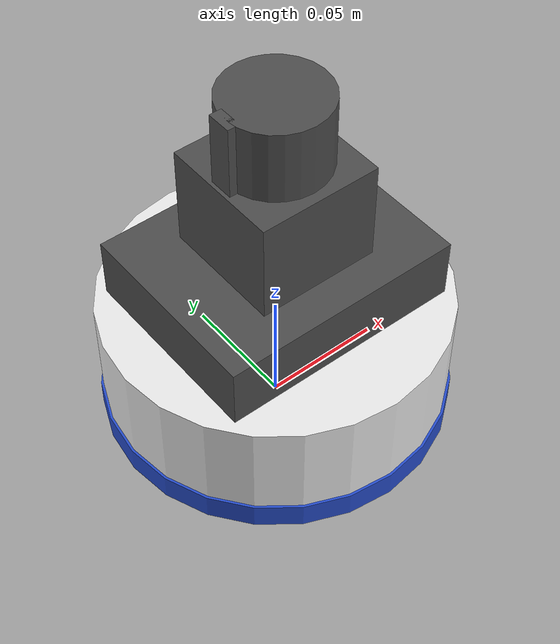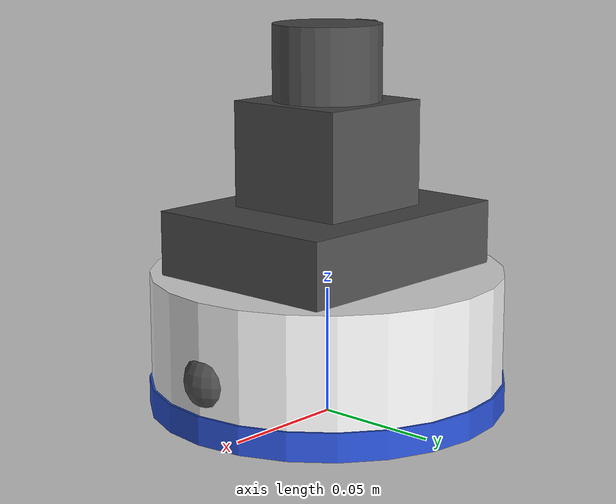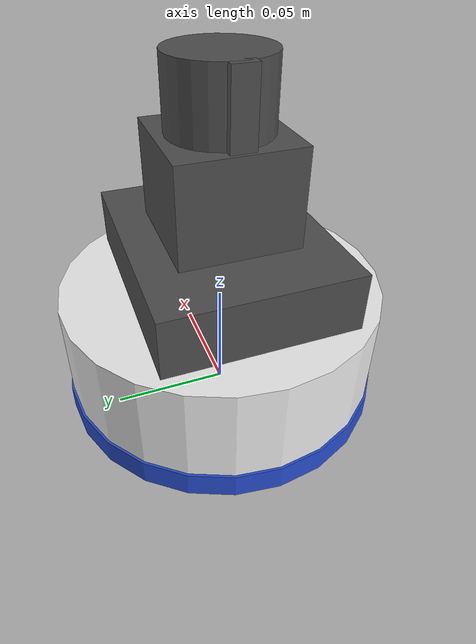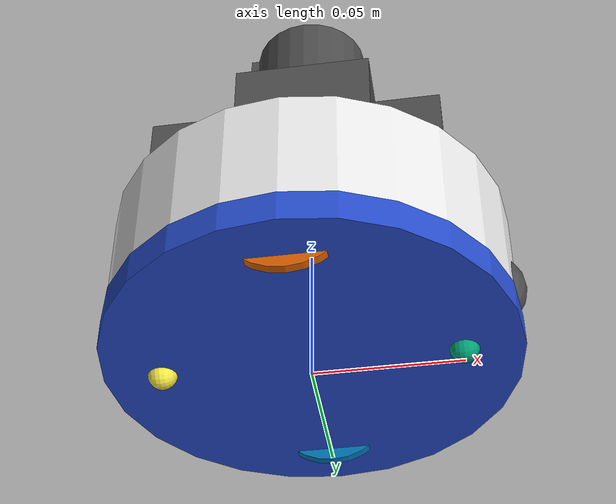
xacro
<?xml version="1.0"?>

<robot xmlns:xacro="http://www.ros.org/wiki/xacro" name="khepera4_lrf">
  <xacro:include filename="$(find robosar_gazebo_sim)/urdf/khepera_body.xacro" />
  <xacro:include filename="$(find robosar_gazebo_sim)/urdf/khepera_camera.xacro" />
  <xacro:include filename="$(find robosar_gazebo_sim)/urdf/khepera_wheel.xacro" />
  <xacro:include filename="$(find robosar_gazebo_sim)/urdf/khepera_caster_wheel.xacro" />
  <xacro:include filename="$(find robosar_gazebo_sim)/urdf/khepera_lrf.xacro" />

  <xacro:khepera_body />
  <xacro:khepera_caster_wheel prefix="front" offset_dir="1" />
  <xacro:khepera_caster_wheel prefix="rear" offset_dir="-1" />
  <xacro:khepera_wheel prefix="left" offset_dir="1" />
  <xacro:khepera_wheel prefix="right" offset_dir="-1" />
  <xacro:khepera_camera />
  <xacro:khepera_lrf />

  <!-- Differential drive controller -->
  <gazebo>
    <plugin name="differential_drive_controller" filename="libgazebo_ros_diff_drive.so">
      <!-- Plugin update rate in Hz -->
      <updateRate>10</updateRate>
      <!-- Name of left joint, defaults to `left_joint` -->
      <leftJoint>base_to_left_wheel</leftJoint>
      <!-- Name of right joint, defaults to `right_joint` -->
      <rightJoint>base_to_right_wheel</rightJoint>
      <!-- The distance from the center of one wheel to the other, in meters, defaults to 0.34 m -->
      <wheelSeparation>0.1054</wheelSeparation>
      <!-- Diameter of the wheels, in meters, defaults to 0.15 m -->
      <wheelDiameter>0.042</wheelDiameter>
      <!-- Wheel acceleration, in rad/s^2, defaults to 0.0 rad/s^2 -->
      <wheelAcceleration>1.0</wheelAcceleration>
      <!-- Maximum torque which the wheels can produce, in Nm, defaults to 5 Nm -->
      <wheelTorque>20</wheelTorque>
      <!-- Topic to receive geometry_msgs/Twist message commands, defaults to `cmd_vel` -->
      <commandTopic>cmd_vel</commandTopic>
      <!-- Topic to publish nav_msgs/Odometry messages, defaults to `odom` -->
      <odometryTopic>odom_data_euler</odometryTopic>
      <!-- Odometry frame, defaults to `odom` -->
      <odometryFrame>odom</odometryFrame>
      <!-- Robot frame to calculate odometry from, defaults to `base_footprint` -->
      <robotBaseFrame>base_link</robotBaseFrame>
      <!-- Odometry source, 0 for ENCODER, 1 for WORLD, defaults to WORLD -->
      <odometrySource>0</odometrySource>
      <!-- Set to true to publish transforms for the wheel links, defaults to false -->
      <publishWheelTF>false</publishWheelTF>
      <!-- Set to true to publish transforms for the odometry, defaults to true -->
      <publishOdom>true</publishOdom>
      <!-- Set to true to publish sensor_msgs/JointState on /joint_states for the wheel joints, defaults to false -->
      <publishWheelJointState>true</publishWheelJointState>
      <!-- Set to true to swap right and left wheels, defaults to true -->
      <legacyMode>false</legacyMode>
    </plugin>
  </gazebo>

</robot>

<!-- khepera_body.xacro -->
<robot xmlns:xacro="http://www.ros.org/wiki/xacro" name="khepera4_lrf">
<xacro:macro name="khepera_body">

  <link name="base_link">
    <visual>
      <origin xyz="0 0 0.0315" rpy="0 0 -1.570796"/>
      <geometry>
        <cylinder radius="0.069" length="0.053"/>
      </geometry>
    </visual>
    <collision>
      <origin xyz="0 0 0.0315" rpy="0 0 -1.570796"/>
      <geometry>
        <cylinder radius="0.069" length="0.053"/>
      </geometry>
    </collision>
    <inertial>
      <mass value="0.6"/>
      <inertia ixx="${1/12*0.6*(3*0.0704*0.0704+0.0577*0.0577)}" ixy="0" ixz="0" iyy="${1/12*0.6*(3*0.0704*0.0704+0.0577*0.0577)}" iyz="0" izz="${1/2*0.6*0.0704*0.0704}"/>
    </inertial>
  </link>

  <link name="ring_link">
    <visual>
      <origin xyz="0 0 0.01" rpy="0 0 -1.570796"/>
      <geometry>
        <cylinder radius="0.07" length="0.011"/>
      </geometry>
    </visual>
    <collision>
      <origin xyz="0 0 0.01" rpy="0 0 -1.570796"/>
      <geometry>
        <cylinder radius="0.07" length="0.011"/>
      </geometry>
    </collision>
  </link>

  <joint name="base_to_ring" type="fixed">
    <parent link="base_link"/>
    <child link="ring_link"/>
    <origin xyz="0 0 0" rpy="0 0 0"/>
  </joint>

  <gazebo reference="base_link">
    <material>Gazebo/White</material>
  </gazebo>

  <gazebo reference="ring_link">
    <material>Gazebo/Blue</material>
  </gazebo>

</xacro:macro>
</robot>

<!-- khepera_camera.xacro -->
<robot xmlns:xacro="http://www.ros.org/wiki/xacro" name="khepera4_lrf">
<xacro:macro name="khepera_camera">

  <link name="camera_link">
    <visual>
      <geometry>
        <sphere radius="0.0125"/>
      </geometry>
    </visual>
  </link>

  <joint name="base_to_camera" type="fixed">
    <parent link="base_link"/>
    <child link="camera_link"/>
    <origin xyz="0.06 0 0.0275" rpy="0 0 0"/>
  </joint>

  <gazebo reference="camera_link">
    <material>Gazebo/DarkGrey</material>
    <sensor type="camera" name="camera1">
      <update_rate>10.0</update_rate>
      <camera name="camera">
        <horizontal_fov>2.28638</horizontal_fov>
        <image>
          <width>752</width>
          <height>480</height>
          <format>R8G8B8</format>
        </image>
        <clip>
          <near>0.02</near>
          <far>300</far>
        </clip>
        <noise>
          <type>gaussian</type>
          <!-- Noise is sampled independently per pixel on each frame.
               That pixel's noise value is added to each of its color
               channels, which at that point lie in the range [0,1]. -->
          <mean>0.0</mean>
          <stddev>0.007</stddev>
        </noise>
      </camera>
      <plugin name="camera_controller" filename="libgazebo_ros_camera.so">
        <alwaysOn>true</alwaysOn>
        <updateRate>0.0</updateRate>
        <cameraName>camera</cameraName>
        <imageTopicName>image_raw</imageTopicName>
        <cameraInfoTopicName>camera_info</cameraInfoTopicName>
        <frameName>camera</frameName>
        <hackBaseline>0.07</hackBaseline>
        <distortionK1>0.0</distortionK1>
        <distortionK2>0.0</distortionK2>
        <distortionK3>0.0</distortionK3>
        <distortionT1>0.0</distortionT1>
        <distortionT2>0.0</distortionT2>
      </plugin>
    </sensor>
  </gazebo>
</xacro:macro>
</robot>

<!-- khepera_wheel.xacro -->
<robot xmlns:xacro="http://www.ros.org/wiki/xacro" name="khepera4_lrf">
<xacro:macro name="khepera_wheel" params="prefix offset_dir">
  <!-- offset_dir should be -1 for right weel, 1 for left wheel -->

  <link name="${prefix}_wheel">
    <visual>
      <origin xyz="0 0 0" rpy="-1.570796 0 -1.5708"/>
      <geometry>
        <cylinder radius="0.021" length="0.003"/>
      </geometry>
    </visual>
    <collision>
      <origin xyz="0 0 0" rpy="-1.570796 0 -1.5708"/>
      <geometry>
        <cylinder radius="0.021" length="0.003"/>
      </geometry>
    </collision>
    <inertial>
      <origin xyz="0 0 0" rpy="-1.570796 0 -1.5708"/>
      <mass value="0.1"/>
      <inertia ixx="${1/12*0.1*(3*.021*.021+.0059*.0059)}" ixy="0.0" ixz="0.0" iyy="${1/12*0.1*(3*.021*.021+.0059*.0059)}" iyz="0.0" izz="${1/2*0.1*.021*.021}"/>
    </inertial>
  </link>

  <joint name="base_to_${prefix}_wheel" type="continuous">
    <parent link="base_link"/>
    <child link="${prefix}_wheel"/>
    <axis xyz="-1 0 0"/>
    <limit effort="10" velocity="47.61"/>
    <origin xyz="0 ${offset_dir*0.0527} 0.021" rpy="1.570796 0 -1.570796"/>
  </joint>

</xacro:macro>
</robot>

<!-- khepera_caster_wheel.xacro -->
<robot xmlns:xacro="http://www.ros.org/wiki/xacro" name="khepera4_lrf">
<xacro:macro name="khepera_caster_wheel" params="prefix offset_dir">
  <!-- offset_dir should be -1 for rear caster weel, 1 for front caster wheel -->

  <link name="${prefix}_caster_wheel">
    <visual>
      <geometry>
        <sphere radius="0.005"/>
      </geometry>
    </visual>
    <collision>
      <geometry>
        <sphere radius="0.005"/>
      </geometry>
    </collision>
  </link>

  <joint name="base_to_${prefix}_caster_wheel" type="fixed">
    <parent link="base_link"/>
    <child link="${prefix}_caster_wheel"/>
    <origin xyz="${offset_dir*0.05} 0 0.00505" rpy="1.570796 0 -1.570796"/>
  </joint>

</xacro:macro>
</robot>

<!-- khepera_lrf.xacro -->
<robot xmlns:xacro="http://www.ros.org/wiki/xacro" name="khepera4_lrf">
<xacro:macro name="khepera_lrf">

  <link name="base_laser_link">
    <visual>
      <origin xyz="0 0 0.003" rpy="0 0 0"/>
      <geometry>
        <cylinder radius="0.021" length="0.029"/>
      </geometry>
    </visual>
    <visual>
      <origin xyz="-0.021 0 0.003" rpy="0 0 0"/>
      <geometry>
        <box size="0.005 0.010 0.029"/>
      </geometry>
    </visual>
    <visual>
      <origin xyz="0 0 -0.032" rpy="0 0 0"/>
      <geometry>
        <box size="0.050 0.050 0.041"/>
      </geometry>
    </visual>
    <visual>
      <origin xyz="0 0 -0.065" rpy="0 0 0"/>
      <geometry>
        <box size="0.100 0.080 0.025"/>
      </geometry>
    </visual>
    <collision>
      <origin xyz="0 0 0.003" rpy="0 0 0"/>
      <geometry>
        <cylinder radius="0.021" length="0.029"/>
      </geometry>
    </collision>
    <collision>
      <origin xyz="-0.021 0 0.003" rpy="0 0 0"/>
      <geometry>
        <box size="0.005 0.010 0.029"/>
      </geometry>
    </collision>
    <collision>
      <origin xyz="0 0 -0.032" rpy="0 0 0"/>
      <geometry>
        <box size="0.050 0.050 0.041"/>
      </geometry>
    </collision>
    <collision>
      <origin xyz="0 0 -0.065" rpy="0 0 0"/>
      <geometry>
        <box size="0.100 0.080 0.025"/>
      </geometry>
    </collision>
  </link>

  <joint name="base_to_lrf" type="fixed">
    <parent link="base_link"/>
    <child link="base_laser_link"/>
    <origin xyz="0 0 0.1355" rpy="0 0 0"/>
  </joint>

  <gazebo reference="base_laser_link">
    <material>Gazebo/DarkGrey</material>
    <sensor type="ray" name="head_hokuyo_sensor">
      <pose>0 0 0 0 0 0</pose>
      <visualize>false</visualize>
      <update_rate>10</update_rate>
      <ray>
        <scan>
          <horizontal>
            <samples>682</samples>
            <resolution>1</resolution>
            <min_angle>-2.0944</min_angle>
            <max_angle>2.0944</max_angle>
          </horizontal>
        </scan>
        <range>
          <min>0.022</min>
          <max>5.500</max>
          <resolution>0.001</resolution>
        </range>
        <noise>
          <type>gaussian</type>
          <mean>0.0</mean>
          <stddev>0.01</stddev>
        </noise>
      </ray>
      <plugin name="gazebo_ros_head_hokuyo_controller" filename="libgazebo_ros_laser.so">
        <topicName>feedback/scan</topicName>
        <frameName>base_laser_link</frameName>
      </plugin>
    </sensor>
  </gazebo>
</xacro:macro>
</robot>
